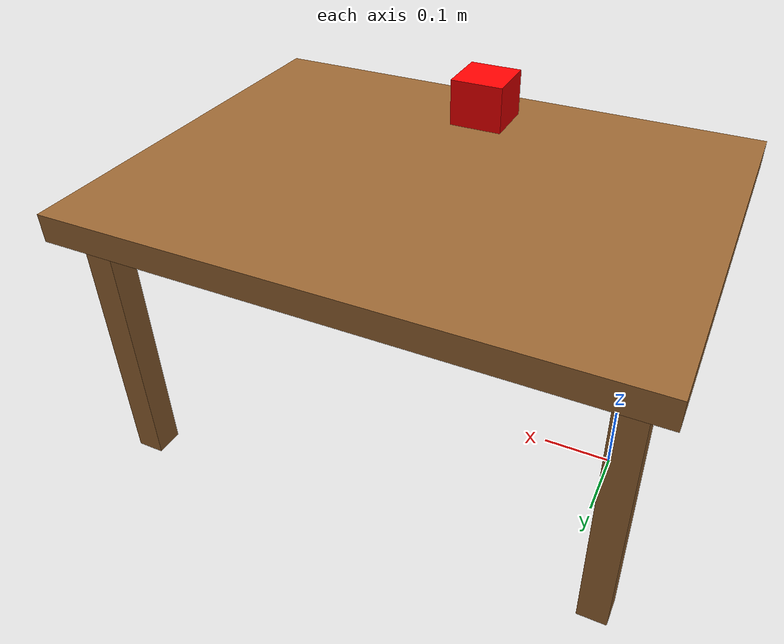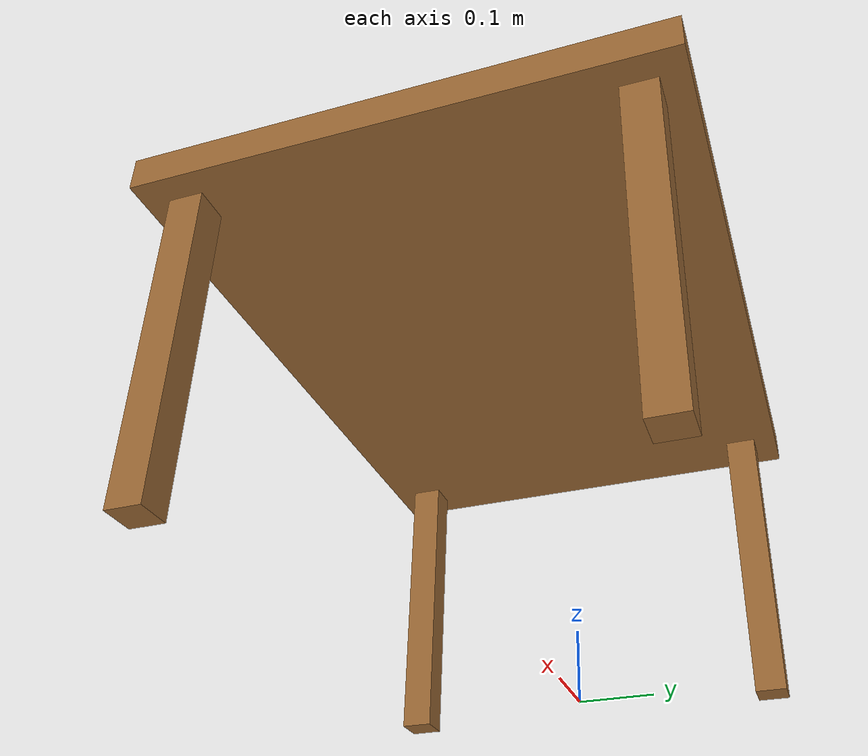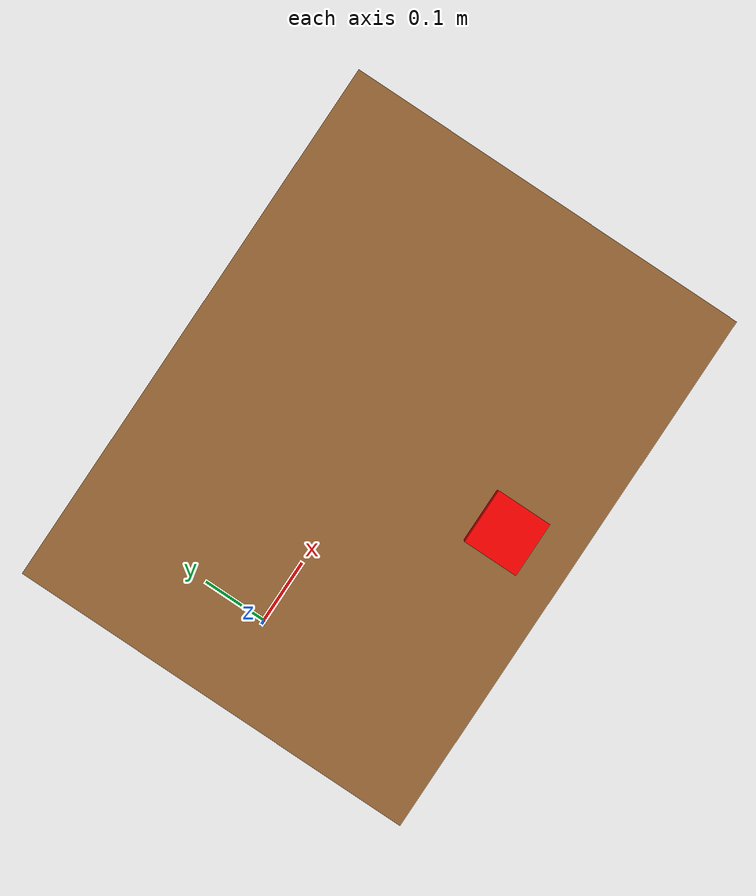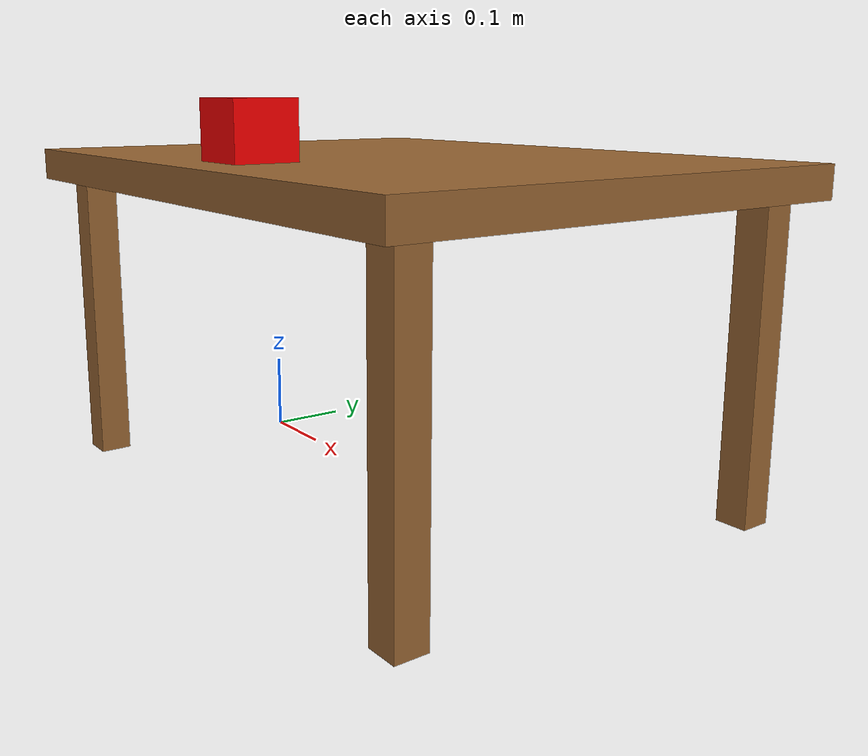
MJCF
<mujoco model="table_and_cube">

  <asset>
    <!-- Materials for table and cube -->
    <material name="table_mat" rgba="0.6 0.4 0.2 1"/>
    <material name="red_cube" rgba="1 0 0 1"/>
  </asset>

  <worldbody>
    <!-- Table -->
    <body name="table" pos="0.3 0 0">
      <geom name="table_surface" type="box" size="0.4 0.3 0.02" pos="0 0 0.4" material="table_mat" contype="1" conaffinity="1"/>
      <geom name="table_leg1" type="box" size="0.02 0.02 0.2" pos="0.35 0.25 0.2" material="table_mat" contype="1" conaffinity="1"/>
      <geom name="table_leg2" type="box" size="0.02 0.02 0.2" pos="0.35 -0.25 0.2" material="table_mat" contype="1" conaffinity="1"/>
      <geom name="table_leg3" type="box" size="0.02 0.02 0.2" pos="-0.35 0.25 0.2" material="table_mat" contype="1" conaffinity="1"/>
      <geom name="table_leg4" type="box" size="0.02 0.02 0.2" pos="-0.35 -0.25 0.2" material="table_mat" contype="1" conaffinity="1"/>
    </body>

    <!-- Red cube on table -->
    <body name="red_cube" pos="0.3 -0.2 0.45">
      <geom name="cube" type="box" size="0.04 0.04 0.04" material="red_cube" contype="1" conaffinity="1" friction="10 0.1 0.01" solref="0.0001 1"/>
      <inertial pos="0 0 0" mass="0.1" diaginertia="0.001 0.001 0.001"/>
      <freejoint/>
    </body>
  </worldbody>

</mujoco>
